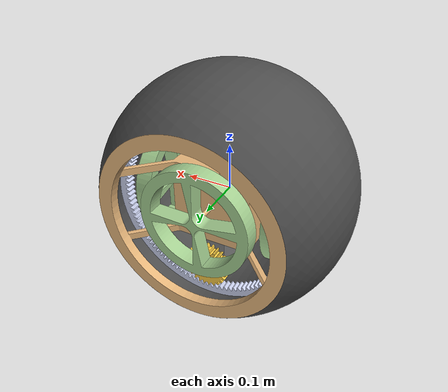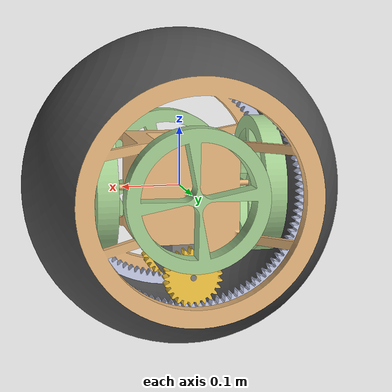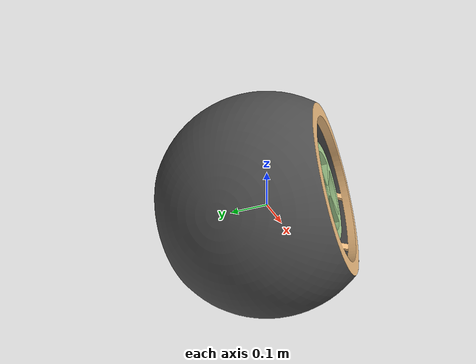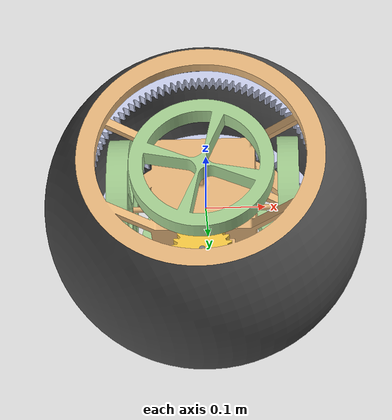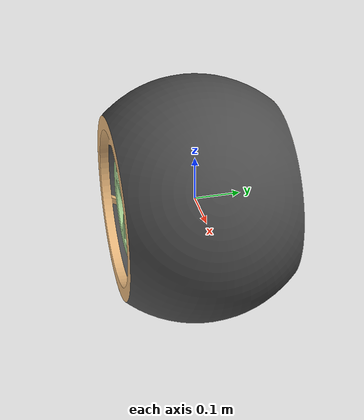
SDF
<?xml version="1.0" ?>
<!-- Generated using onshape-to-robot -->
<!-- Onshape https://cad.onshape.com/documents/8292e6d600ced3c2465d3841/w/70278e14ae86b4fb3ec7bf72/e/6feb0eee0dd640eee4462cd0 -->
<sdf version="1.7">
  <model name="spherical_robot">
    <!-- Link frame -->
    <link name="frame">
      <inertial>
        <pose>4.01233e-10 4.01233e-10 -0.0147997 0 0 0</pose>
        <mass>5.6812</mass>
        <inertia>
          <ixx>0.100807</ixx>
          <ixy>1.23838e-20</ixy>
          <ixz>-2.66501e-11</ixz>
          <iyy>0.0820328</iyy>
          <iyz>-4.08214e-11</iyz>
          <izz>0.0962124</izz>
        </inertia>
      </inertial>
      <pose>0 0 0 0 -0 0</pose>
      <!-- Part motor -->
      <visual name="motor_visual_mesh_1">
        <pose relative_to="frame">-3.66259e-17 0.045 -0.135 3.14159 -2.65113e-16 1.5708</pose>
        <geometry>
          <mesh>
            <uri>model://spherical_robot/assets/motor.stl</uri>
          </mesh>
        </geometry>
        <material>
          <ambient>0.498039 0.498039 0.498039 1</ambient>
          <diffuse>0.498039 0.498039 0.498039 1</diffuse>
          <specular>0.1 0.1 0.1 1</specular>
          <emissive>0 0 0 0</emissive>
        </material>
      </visual>
      <collision name="motor_collision_mesh_2">
        <pose relative_to="frame">-3.66259e-17 0.045 -0.135 3.14159 -2.65113e-16 1.5708</pose>
        <geometry>
          <mesh>
            <uri>model://spherical_robot/assets/motor.stl</uri>
          </mesh>
        </geometry>
      </collision>
      <!-- Part frame -->
      <visual name="frame_visual_mesh_1">
        <pose relative_to="frame">0 0 0 -3.14159 -3.19497e-16 3.66144e-55</pose>
        <geometry>
          <mesh>
            <uri>model://spherical_robot/assets/frame.stl</uri>
          </mesh>
        </geometry>
        <material>
          <ambient>0.917647 0.72549 0.490196 1</ambient>
          <diffuse>0.917647 0.72549 0.490196 1</diffuse>
          <specular>0.1 0.1 0.1 1</specular>
          <emissive>0 0 0 0</emissive>
        </material>
      </visual>
      <collision name="frame_collision_mesh_2">
        <pose relative_to="frame">0 0 0 -3.14159 -3.19497e-16 3.66144e-55</pose>
        <geometry>
          <mesh>
            <uri>model://spherical_robot/assets/frame.stl</uri>
          </mesh>
        </geometry>
      </collision>
      <!-- Part motor_2 -->
      <visual name="motor_2_visual_mesh_1">
        <pose relative_to="frame">-2.07043e-17 -0.045 -0.135 3.14159 -5.10804e-17 -1.5708</pose>
        <geometry>
          <mesh>
            <uri>model://spherical_robot/assets/motor.stl</uri>
          </mesh>
        </geometry>
        <material>
          <ambient>0.498039 0.498039 0.498039 1</ambient>
          <diffuse>0.498039 0.498039 0.498039 1</diffuse>
          <specular>0.1 0.1 0.1 1</specular>
          <emissive>0 0 0 0</emissive>
        </material>
      </visual>
      <collision name="motor_2_collision_mesh_2">
        <pose relative_to="frame">-2.07043e-17 -0.045 -0.135 3.14159 -5.10804e-17 -1.5708</pose>
        <geometry>
          <mesh>
            <uri>model://spherical_robot/assets/motor.stl</uri>
          </mesh>
        </geometry>
      </collision>
    </link>
    <!-- Link inertial_wheel -->
    <link name="inertial_wheel">
      <inertial>
        <pose>1.04194e-17 2.84745e-17 0.0154962 0 0 0</pose>
        <mass>5.42378</mass>
        <inertia>
          <ixx>0.0270726</ixx>
          <ixy>0</ixy>
          <ixz>3.5079e-33</ixz>
          <iyy>0.0270726</iyy>
          <iyz>0</iyz>
          <izz>0.0530374</izz>
        </inertia>
      </inertial>
      <pose relative_to="rw_x">0 0 0 0 -0 0</pose>
      <!-- Part inertial_wheel -->
      <visual name="inertial_wheel_visual_mesh_1">
        <pose relative_to="inertial_wheel">0 -3.06162e-19 0.0155 -1.5708 -1.28668e-31 0</pose>
        <geometry>
          <mesh>
            <uri>model://spherical_robot/assets/inertial_wheel.stl</uri>
          </mesh>
        </geometry>
        <material>
          <ambient>0.654902 0.823529 0.576471 1</ambient>
          <diffuse>0.654902 0.823529 0.576471 1</diffuse>
          <specular>0.1 0.1 0.1 1</specular>
          <emissive>0 0 0 0</emissive>
        </material>
      </visual>
      <collision name="inertial_wheel_collision_mesh_2">
        <pose relative_to="inertial_wheel">0 -3.06162e-19 0.0155 -1.5708 -1.28668e-31 0</pose>
        <geometry>
          <mesh>
            <uri>model://spherical_robot/assets/inertial_wheel.stl</uri>
          </mesh>
        </geometry>
      </collision>
    </link>
    <!-- Joint from frame to inertial_wheel -->
    <joint name="rw_x" type="revolute">
      <pose relative_to="frame">-0.155 6.93889e-18 -6.24815e-17 -1.5708 7.45191e-07 -1.5708</pose>
      <parent>frame</parent>
      <child>inertial_wheel</child>
      <axis>
        <xyz>0 0 1</xyz>
        <limit>
          <effort>10</effort>
          <velocity>10</velocity>
          <lower>-3.141592653589793</lower>
          <upper>3.141592653589793</upper>
        </limit>
        <dynamics>
          <friction>0.0</friction>
          <damping>0.0</damping>
        </dynamics>
      </axis>
    </joint>
    <!-- Link inertial_wheel_2 -->
    <link name="inertial_wheel_2">
      <inertial>
        <pose>1.04194e-17 2.84745e-17 0.0154962 0 0 0</pose>
        <mass>5.42378</mass>
        <inertia>
          <ixx>0.0270726</ixx>
          <ixy>-7.51415e-19</ixy>
          <ixz>-3.26868e-34</ixz>
          <iyy>0.0270726</iyy>
          <iyz>8.1717e-35</iyz>
          <izz>0.0530374</izz>
        </inertia>
      </inertial>
      <pose relative_to="rw_y">0 0 0 0 -0 0</pose>
      <!-- Part inertial_wheel_2 -->
      <visual name="inertial_wheel_2_visual_mesh_1">
        <pose relative_to="inertial_wheel_2">7.70372e-34 -3.06162e-19 0.0155 -1.5708 -0 -2.77556e-17</pose>
        <geometry>
          <mesh>
            <uri>model://spherical_robot/assets/inertial_wheel.stl</uri>
          </mesh>
        </geometry>
        <material>
          <ambient>0.654902 0.823529 0.576471 1</ambient>
          <diffuse>0.654902 0.823529 0.576471 1</diffuse>
          <specular>0.1 0.1 0.1 1</specular>
          <emissive>0 0 0 0</emissive>
        </material>
      </visual>
      <collision name="inertial_wheel_2_collision_mesh_2">
        <pose relative_to="inertial_wheel_2">7.70372e-34 -3.06162e-19 0.0155 -1.5708 -0 -2.77556e-17</pose>
        <geometry>
          <mesh>
            <uri>model://spherical_robot/assets/inertial_wheel.stl</uri>
          </mesh>
        </geometry>
      </collision>
    </link>
    <!-- Joint from frame to inertial_wheel_2 -->
    <joint name="rw_y" type="revolute">
      <pose relative_to="frame">-1.64113e-22 0.155 1.90737e-18 1.5708 -1.38032 -1.90153e-16</pose>
      <parent>frame</parent>
      <child>inertial_wheel_2</child>
      <axis>
        <xyz>0 0 1</xyz>
        <limit>
          <effort>10</effort>
          <velocity>10</velocity>
          <lower>-3.141592653589793</lower>
          <upper>3.141592653589793</upper>
        </limit>
        <dynamics>
          <friction>0.0</friction>
          <damping>0.0</damping>
        </dynamics>
      </axis>
    </joint>
    <!-- Link inertial_wheel_3 -->
    <link name="inertial_wheel_3">
      <inertial>
        <pose>1.02035e-17 2.68386e-17 0.0154962 0 0 0</pose>
        <mass>5.42378</mass>
        <inertia>
          <ixx>0.0270726</ixx>
          <ixy>1.98531e-18</ixy>
          <ixz>-1.68233e-18</ixz>
          <iyy>0.0270726</iyy>
          <iyz>5.90871e-18</iyz>
          <izz>0.0530374</izz>
        </inertia>
      </inertial>
      <pose relative_to="rw_z">0 0 0 0 -0 0</pose>
      <!-- Part inertial_wheel_3 -->
      <visual name="inertial_wheel_3_visual_mesh_1">
        <pose relative_to="inertial_wheel_3">-2.15951e-19 -1.94237e-18 0.0155 -1.5708 3.48472e-17 -7.45191e-07</pose>
        <geometry>
          <mesh>
            <uri>model://spherical_robot/assets/inertial_wheel.stl</uri>
          </mesh>
        </geometry>
        <material>
          <ambient>0.654902 0.823529 0.576471 1</ambient>
          <diffuse>0.654902 0.823529 0.576471 1</diffuse>
          <specular>0.1 0.1 0.1 1</specular>
          <emissive>0 0 0 0</emissive>
        </material>
      </visual>
      <collision name="inertial_wheel_3_collision_mesh_2">
        <pose relative_to="inertial_wheel_3">-2.15951e-19 -1.94237e-18 0.0155 -1.5708 3.48472e-17 -7.45191e-07</pose>
        <geometry>
          <mesh>
            <uri>model://spherical_robot/assets/inertial_wheel.stl</uri>
          </mesh>
        </geometry>
      </collision>
    </link>
    <!-- Joint from frame to inertial_wheel_3 -->
    <joint name="rw_z" type="revolute">
      <pose relative_to="frame">0.155 5.67522e-56 6.18692e-17 1.5708 3.66644e-17 -1.5708</pose>
      <parent>frame</parent>
      <child>inertial_wheel_3</child>
      <axis>
        <xyz>0 0 1</xyz>
        <limit>
          <effort>10</effort>
          <velocity>10</velocity>
          <lower>-3.141592653589793</lower>
          <upper>3.141592653589793</upper>
        </limit>
        <dynamics>
          <friction>0.0</friction>
          <damping>0.0</damping>
        </dynamics>
      </axis>
    </joint>
    <!-- Link inertial_wheel_4 -->
    <link name="inertial_wheel_4">
      <inertial>
        <pose>1.04194e-17 2.84745e-17 0.0154962 0 0 0</pose>
        <mass>5.42378</mass>
        <inertia>
          <ixx>0.0270726</ixx>
          <ixy>4.81482e-34</ixy>
          <ixz>-1.66848e-34</ixz>
          <iyy>0.0270726</iyy>
          <iyz>4.00051e-35</iyz>
          <izz>0.0530374</izz>
        </inertia>
      </inertial>
      <pose relative_to="rw_w">0 0 0 0 -0 0</pose>
      <!-- Part inertial_wheel_4 -->
      <visual name="inertial_wheel_4_visual_mesh_1">
        <pose relative_to="inertial_wheel_4">0 -3.06162e-19 0.0155 -1.5708 6.16298e-33 2.77556e-17</pose>
        <geometry>
          <mesh>
            <uri>model://spherical_robot/assets/inertial_wheel.stl</uri>
          </mesh>
        </geometry>
        <material>
          <ambient>0.654902 0.823529 0.576471 1</ambient>
          <diffuse>0.654902 0.823529 0.576471 1</diffuse>
          <specular>0.1 0.1 0.1 1</specular>
          <emissive>0 0 0 0</emissive>
        </material>
      </visual>
      <collision name="inertial_wheel_4_collision_mesh_2">
        <pose relative_to="inertial_wheel_4">0 -3.06162e-19 0.0155 -1.5708 6.16298e-33 2.77556e-17</pose>
        <geometry>
          <mesh>
            <uri>model://spherical_robot/assets/inertial_wheel.stl</uri>
          </mesh>
        </geometry>
      </collision>
    </link>
    <!-- Joint from frame to inertial_wheel_4 -->
    <joint name="rw_w" type="revolute">
      <pose relative_to="frame">1.64113e-22 -0.155 9.49754e-19 -1.5708 -1.38032 -1.90143e-16</pose>
      <parent>frame</parent>
      <child>inertial_wheel_4</child>
      <axis>
        <xyz>0 0 1</xyz>
        <limit>
          <effort>10</effort>
          <velocity>10</velocity>
          <lower>-3.141592653589793</lower>
          <upper>3.141592653589793</upper>
        </limit>
        <dynamics>
          <friction>0.0</friction>
          <damping>0.0</damping>
        </dynamics>
      </axis>
    </joint>
    <!-- Link outer -->
    <link name="outer">
      <inertial>
        <pose>-1.21378e-06 1.77607e-06 0.18028 0 0 0</pose>
        <mass>21.3538</mass>
        <inertia>
          <ixx>0.695158</ixx>
          <ixy>2.81968e-05</ixy>
          <ixz>-6.47805e-16</ixz>
          <iyy>0.695136</iyy>
          <iyz>6.36409e-17</iyz>
          <izz>1.03355</izz>
        </inertia>
      </inertial>
      <pose relative_to="outer_2">0 0 0 0 -0 0</pose>
      <!-- Part internal_gear -->
      <visual name="internal_gear_visual_mesh_1">
        <pose relative_to="outer">0.00392548 -0.00574396 0.264747 -2.1703 1.5708 0</pose>
        <geometry>
          <mesh>
            <uri>model://spherical_robot/assets/internal_gear.stl</uri>
          </mesh>
        </geometry>
        <material>
          <ambient>0.796078 0.823529 0.937255 1</ambient>
          <diffuse>0.796078 0.823529 0.937255 1</diffuse>
          <specular>0.1 0.1 0.1 1</specular>
          <emissive>0 0 0 0</emissive>
        </material>
      </visual>
      <collision name="internal_gear_collision_mesh_2">
        <pose relative_to="outer">0.00392548 -0.00574396 0.264747 -2.1703 1.5708 0</pose>
        <geometry>
          <mesh>
            <uri>model://spherical_robot/assets/internal_gear.stl</uri>
          </mesh>
        </geometry>
      </collision>
      <!-- Part internal_gear_2 -->
      <visual name="internal_gear_2_visual_mesh_1">
        <pose relative_to="outer">0.00574396 0.00392548 0.0596262 2.54209 1.5708 0</pose>
        <geometry>
          <mesh>
            <uri>model://spherical_robot/assets/internal_gear.stl</uri>
          </mesh>
        </geometry>
        <material>
          <ambient>0.796078 0.823529 0.937255 1</ambient>
          <diffuse>0.796078 0.823529 0.937255 1</diffuse>
          <specular>0.1 0.1 0.1 1</specular>
          <emissive>0 0 0 0</emissive>
        </material>
      </visual>
      <collision name="internal_gear_2_collision_mesh_2">
        <pose relative_to="outer">0.00574396 0.00392548 0.0596262 2.54209 1.5708 0</pose>
        <geometry>
          <mesh>
            <uri>model://spherical_robot/assets/internal_gear.stl</uri>
          </mesh>
        </geometry>
      </collision>
      <!-- Part outer -->
      <visual name="outer_visual_mesh_1">
        <pose relative_to="outer">-5.10971e-17 1.46138e-16 0.18028 -1.5708 -6.72614e-16 -0.971291</pose>
        <geometry>
          <mesh>
            <uri>model://spherical_robot/assets/outer.stl</uri>
          </mesh>
        </geometry>
        <material>
          <ambient>0.301961 0.301961 0.301961 1</ambient>
          <diffuse>0.301961 0.301961 0.301961 1</diffuse>
          <specular>0.1 0.1 0.1 1</specular>
          <emissive>0 0 0 0</emissive>
        </material>
      </visual>
      <collision name="outer_collision_mesh_2">
        <pose relative_to="outer">-5.10971e-17 1.46138e-16 0.18028 -1.5708 -6.72614e-16 -0.971291</pose>
        <geometry>
          <mesh>
            <uri>model://spherical_robot/assets/outer.stl</uri>
          </mesh>
        </geometry>
      </collision>
    </link>
    <!-- Joint from frame to outer -->
    <joint name="outer_2" type="revolute">
      <pose relative_to="frame">9.94916e-17 0.180277 -1.04195e-17 1.5708 -3.19497e-16 3.66144e-55</pose>
      <parent>frame</parent>
      <child>outer</child>
      <axis>
        <xyz>0 0 1</xyz>
        <limit>
          <effort>10</effort>
          <velocity>10</velocity>
          <lower>-3.141592653589793</lower>
          <upper>3.141592653589793</upper>
        </limit>
        <mimic joint="motor_joint_2">
          <multiplier>0.25</multiplier>
        </mimic>
        <dynamics>
          <friction>0.0</friction>
          <damping>0.0</damping>
        </dynamics>
      </axis>
    </joint>
    <!-- Link spur_gear -->
    <link name="spur_gear">
      <inertial>
        <pose>2.73219e-17 1.47451e-17 0.0109091 0 0 0</pose>
        <mass>1.06896</mass>
        <inertia>
          <ixx>0.000598717</ixx>
          <ixy>-2.60209e-18</ixy>
          <ixz>3.53171e-20</ixz>
          <iyy>0.000598717</iyy>
          <iyz>3.70601e-19</iyz>
          <izz>0.00111262</izz>
        </inertia>
      </inertial>
      <pose relative_to="motor_joint_1">0 0 0 0 -0 0</pose>
      <!-- Part spur_gear -->
      <visual name="spur_gear_visual_mesh_1">
        <pose relative_to="spur_gear">-0.00373433 -0.00411664 0.00854085 -0.827225 1.5708 0</pose>
        <geometry>
          <mesh>
            <uri>model://spherical_robot/assets/spur_gear.stl</uri>
          </mesh>
        </geometry>
        <material>
          <ambient>0.980392 0.796078 0.262745 1</ambient>
          <diffuse>0.980392 0.796078 0.262745 1</diffuse>
          <specular>0.1 0.1 0.1 1</specular>
          <emissive>0 0 0 0</emissive>
        </material>
      </visual>
      <collision name="spur_gear_collision_mesh_2">
        <pose relative_to="spur_gear">-0.00373433 -0.00411664 0.00854085 -0.827225 1.5708 0</pose>
        <geometry>
          <mesh>
            <uri>model://spherical_robot/assets/spur_gear.stl</uri>
          </mesh>
        </geometry>
      </collision>
    </link>
    <!-- Joint from frame to spur_gear -->
    <joint name="motor_joint_1" type="revolute">
      <pose relative_to="frame">-3.62185e-17 0.113466 -0.135 1.5708 -4.51182e-16 -8.11203e-18</pose>
      <parent>frame</parent>
      <child>spur_gear</child>
      <axis>
        <xyz>0 0 1</xyz>
        <limit>
          <effort>10</effort>
          <velocity>10</velocity>
          <lower>-3.141592653589793</lower>
          <upper>3.141592653589793</upper>
        </limit>
        <dynamics>
          <friction>0.0</friction>
          <damping>0.0</damping>
        </dynamics>
      </axis>
    </joint>
    <!-- Link spur_gear_2 -->
    <link name="spur_gear_2">
      <inertial>
        <pose>-2.44759e-17 -3.81639e-17 -0.0109091 0 0 0</pose>
        <mass>1.06896</mass>
        <inertia>
          <ixx>0.000598717</ixx>
          <ixy>-6.6471e-20</ixy>
          <ixz>-3.42854e-35</ixz>
          <iyy>0.000598717</iyy>
          <iyz>5.5902e-35</iyz>
          <izz>0.00111262</izz>
        </inertia>
      </inertial>
      <pose relative_to="motor_joint_2">0 0 0 0 -0 0</pose>
      <!-- Part spur_gear_2 -->
      <visual name="spur_gear_2_visual_mesh_1">
        <pose relative_to="spur_gear_2">-3.79643e-05 0.00555792 -0.0132773 1.5708 1.5708 0</pose>
        <geometry>
          <mesh>
            <uri>model://spherical_robot/assets/spur_gear.stl</uri>
          </mesh>
        </geometry>
        <material>
          <ambient>0.980392 0.796078 0.262745 1</ambient>
          <diffuse>0.980392 0.796078 0.262745 1</diffuse>
          <specular>0.1 0.1 0.1 1</specular>
          <emissive>0 0 0 0</emissive>
        </material>
      </visual>
      <collision name="spur_gear_2_collision_mesh_2">
        <pose relative_to="spur_gear_2">-3.79643e-05 0.00555792 -0.0132773 1.5708 1.5708 0</pose>
        <geometry>
          <mesh>
            <uri>model://spherical_robot/assets/spur_gear.stl</uri>
          </mesh>
        </geometry>
      </collision>
    </link>
    <!-- Joint from frame to spur_gear_2 -->
    <joint name="motor_joint_2" type="revolute">
      <pose relative_to="frame">-3.03577e-17 -0.113466 -0.135 -1.5708 -0.743571 -3.14159</pose>
      <parent>frame</parent>
      <child>spur_gear_2</child>
      <axis>
        <xyz>0 0 1</xyz>
        <limit>
          <effort>10</effort>
          <velocity>10</velocity>
          <lower>-3.141592653589793</lower>
          <upper>3.141592653589793</upper>
        </limit>
        <mimic joint="motor_joint_1">
          <multiplier>1.0</multiplier>
        </mimic>
        <dynamics>
          <friction>0.0</friction>
          <damping>0.0</damping>
        </dynamics>
      </axis>
    </joint>
  </model>
</sdf>
